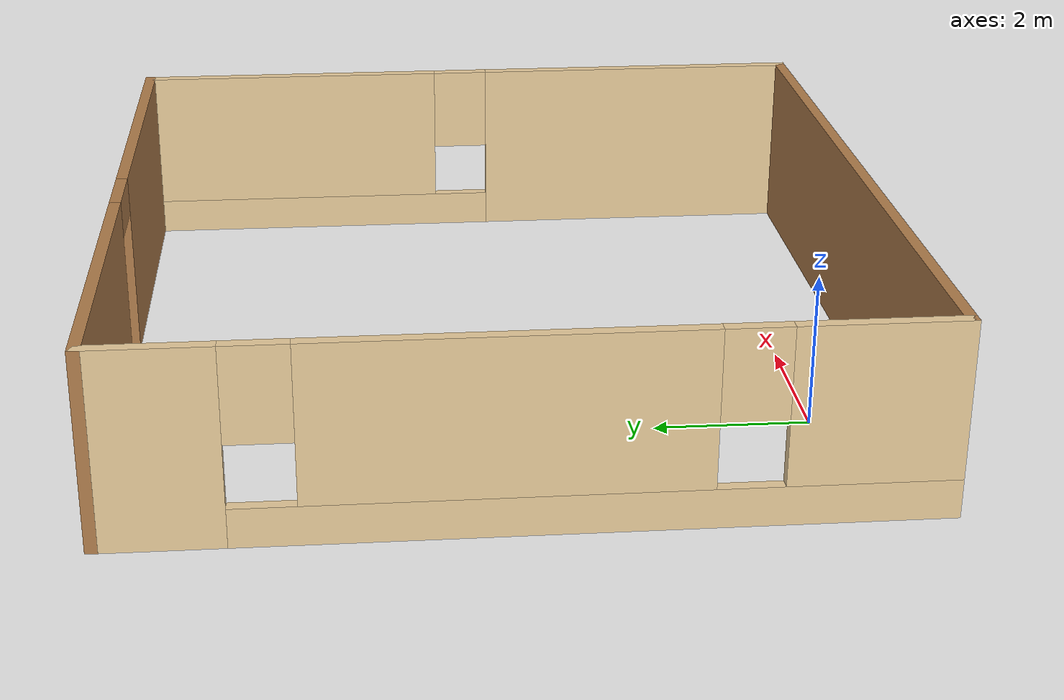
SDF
<?xml version='1.0'?>
<sdf version='1.6'>
  <model name='building'>
    <pose frame=''>2.505 3.815 0 0 -0 0</pose>
    <link name='Wall_0'>
      <collision name='Wall_0_Collision'>
        <geometry>
          <box>
            <size>10 0.15 2.5</size>
          </box>
        </geometry>
        <pose frame=''>0 0 1.25 0 -0 0</pose>
      </collision>
      <visual name='Wall_0_Visual'>
        <pose frame=''>0 0 1.25 0 -0 0</pose>
        <geometry>
          <box>
            <size>10 0.15 2.5</size>
          </box>
        </geometry>
        <material>
          <script>
            <uri>file://media/materials/scripts/gazebo.material</uri>
            <name>Gazebo/Wood</name>
          </script>
          <ambient>1 1 1 1</ambient>
        </material>
        <meta>
          <layer>0</layer>
        </meta>
      </visual>
      <pose frame=''>0 -4.925 0 0 -0 0</pose>
    </link>
    <link name='Wall_1'>
      <pose frame=''>4.925 0 0 0 -0 1.5708</pose>
      <visual name='Wall_1_Visual_0'>
        <pose frame=''>-2.62739 0 1.25 0 -0 0</pose>
        <geometry>
          <box>
            <size>4.74523 0.15 2.5</size>
          </box>
        </geometry>
        <material>
          <script>
            <uri>file://media/materials/scripts/gazebo.material</uri>
            <name>Gazebo/Grey</name>
          </script>
          <ambient>0.921569 0.807843 0.615686 1</ambient>
        </material>
        <meta>
          <layer>0</layer>
        </meta>
      </visual>
      <collision name='Wall_1_Collision_0'>
        <geometry>
          <box>
            <size>4.74523 0.15 2.5</size>
          </box>
        </geometry>
        <pose frame=''>-2.62739 0 1.25 0 -0 0</pose>
      </collision>
      <visual name='Wall_1_Visual_1'>
        <pose frame=''>2.37261 0 0.25 0 -0 0</pose>
        <geometry>
          <box>
            <size>5.25477 0.15 0.5</size>
          </box>
        </geometry>
        <material>
          <script>
            <uri>file://media/materials/scripts/gazebo.material</uri>
            <name>Gazebo/Grey</name>
          </script>
          <ambient>0.921569 0.807843 0.615686 1</ambient>
        </material>
        <meta>
          <layer>0</layer>
        </meta>
      </visual>
      <collision name='Wall_1_Collision_1'>
        <geometry>
          <box>
            <size>5.25477 0.15 0.5</size>
          </box>
        </geometry>
        <pose frame=''>2.37261 0 0.25 0 -0 0</pose>
      </collision>
      <visual name='Wall_1_Visual_2'>
        <pose frame=''>2.77261 0 1.5 0 -0 0</pose>
        <geometry>
          <box>
            <size>4.45477 0.15 2</size>
          </box>
        </geometry>
        <material>
          <script>
            <uri>file://media/materials/scripts/gazebo.material</uri>
            <name>Gazebo/Grey</name>
          </script>
          <ambient>0.921569 0.807843 0.615686 1</ambient>
        </material>
        <meta>
          <layer>0</layer>
        </meta>
      </visual>
      <collision name='Wall_1_Collision_2'>
        <geometry>
          <box>
            <size>4.45477 0.15 2</size>
          </box>
        </geometry>
        <pose frame=''>2.77261 0 1.5 0 -0 0</pose>
      </collision>
      <visual name='Wall_1_Visual_3'>
        <pose frame=''>0.145226 0 1.9 0 -0 0</pose>
        <geometry>
          <box>
            <size>0.8 0.15 1.2</size>
          </box>
        </geometry>
        <material>
          <script>
            <uri>file://media/materials/scripts/gazebo.material</uri>
            <name>Gazebo/Grey</name>
          </script>
          <ambient>0.921569 0.807843 0.615686 1</ambient>
        </material>
        <meta>
          <layer>0</layer>
        </meta>
      </visual>
      <collision name='Wall_1_Collision_3'>
        <geometry>
          <box>
            <size>0.8 0.15 1.2</size>
          </box>
        </geometry>
        <pose frame=''>0.145226 0 1.9 0 -0 0</pose>
      </collision>
    </link>
    <link name='Wall_2'>
      <pose frame=''>0 4.925 0 0 -0 3.14159</pose>
      <visual name='Wall_2_Visual_0'>
        <pose frame=''>-2.70057 0 1.25 0 -0 0</pose>
        <geometry>
          <box>
            <size>4.59886 0.15 2.5</size>
          </box>
        </geometry>
        <material>
          <script>
            <uri>file://media/materials/scripts/gazebo.material</uri>
            <name>Gazebo/Wood</name>
          </script>
          <ambient>1 1 1 1</ambient>
        </material>
        <meta>
          <layer>0</layer>
        </meta>
      </visual>
      <collision name='Wall_2_Collision_0'>
        <geometry>
          <box>
            <size>4.59886 0.15 2.5</size>
          </box>
        </geometry>
        <pose frame=''>-2.70057 0 1.25 0 -0 0</pose>
      </collision>
      <visual name='Wall_2_Visual_1'>
        <pose frame=''>2.74943 0 1.25 0 -0 0</pose>
        <geometry>
          <box>
            <size>4.50114 0.15 2.5</size>
          </box>
        </geometry>
        <material>
          <script>
            <uri>file://media/materials/scripts/gazebo.material</uri>
            <name>Gazebo/Wood</name>
          </script>
          <ambient>1 1 1 1</ambient>
        </material>
        <meta>
          <layer>0</layer>
        </meta>
      </visual>
      <collision name='Wall_2_Collision_1'>
        <geometry>
          <box>
            <size>4.50114 0.15 2.5</size>
          </box>
        </geometry>
        <pose frame=''>2.74943 0 1.25 0 -0 0</pose>
      </collision>
      <visual name='Wall_2_Visual_2'>
        <pose frame=''>0.048863 0 2.25 0 -0 0</pose>
        <geometry>
          <box>
            <size>0.9 0.15 0.5</size>
          </box>
        </geometry>
        <material>
          <script>
            <uri>file://media/materials/scripts/gazebo.material</uri>
            <name>Gazebo/Wood</name>
          </script>
          <ambient>1 1 1 1</ambient>
        </material>
        <meta>
          <layer>0</layer>
        </meta>
      </visual>
      <collision name='Wall_2_Collision_2'>
        <geometry>
          <box>
            <size>0.9 0.15 0.5</size>
          </box>
        </geometry>
        <pose frame=''>0.048863 0 2.25 0 -0 0</pose>
      </collision>
    </link>
    <link name='Wall_3'>
      <pose frame=''>-4.925 0 0 0 0 -1.5708</pose>
      <visual name='Wall_3_Visual_0'>
        <pose frame=''>-4.20381 0 1.25 0 -0 0</pose>
        <geometry>
          <box>
            <size>1.59239 0.15 2.5</size>
          </box>
        </geometry>
        <material>
          <script>
            <uri>file://media/materials/scripts/gazebo.material</uri>
            <name>Gazebo/Grey</name>
          </script>
          <ambient>0.921569 0.807843 0.615686 1</ambient>
        </material>
        <meta>
          <layer>0</layer>
        </meta>
      </visual>
      <collision name='Wall_3_Collision_0'>
        <geometry>
          <box>
            <size>1.59239 0.15 2.5</size>
          </box>
        </geometry>
        <pose frame=''>-4.20381 0 1.25 0 -0 0</pose>
      </collision>
      <visual name='Wall_3_Visual_1'>
        <pose frame=''>0.796195 0 0.25 0 -0 0</pose>
        <geometry>
          <box>
            <size>8.40761 0.15 0.5</size>
          </box>
        </geometry>
        <material>
          <script>
            <uri>file://media/materials/scripts/gazebo.material</uri>
            <name>Gazebo/Grey</name>
          </script>
          <ambient>0.921569 0.807843 0.615686 1</ambient>
        </material>
        <meta>
          <layer>0</layer>
        </meta>
      </visual>
      <collision name='Wall_3_Collision_1'>
        <geometry>
          <box>
            <size>8.40761 0.15 0.5</size>
          </box>
        </geometry>
        <pose frame=''>0.796195 0 0.25 0 -0 0</pose>
      </collision>
      <visual name='Wall_3_Visual_2'>
        <pose frame=''>-0.238856 0 1.5 0 -0 0</pose>
        <geometry>
          <box>
            <size>4.73751 0.15 2</size>
          </box>
        </geometry>
        <material>
          <script>
            <uri>file://media/materials/scripts/gazebo.material</uri>
            <name>Gazebo/Grey</name>
          </script>
          <ambient>0.921569 0.807843 0.615686 1</ambient>
        </material>
        <meta>
          <layer>0</layer>
        </meta>
      </visual>
      <collision name='Wall_3_Collision_2'>
        <geometry>
          <box>
            <size>4.73751 0.15 2</size>
          </box>
        </geometry>
        <pose frame=''>-0.238856 0 1.5 0 -0 0</pose>
      </collision>
      <visual name='Wall_3_Visual_3'>
        <pose frame=''>3.96495 0 1.5 0 -0 0</pose>
        <geometry>
          <box>
            <size>2.0701 0.15 2</size>
          </box>
        </geometry>
        <material>
          <script>
            <uri>file://media/materials/scripts/gazebo.material</uri>
            <name>Gazebo/Grey</name>
          </script>
          <ambient>0.921569 0.807843 0.615686 1</ambient>
        </material>
        <meta>
          <layer>0</layer>
        </meta>
      </visual>
      <collision name='Wall_3_Collision_3'>
        <geometry>
          <box>
            <size>2.0701 0.15 2</size>
          </box>
        </geometry>
        <pose frame=''>3.96495 0 1.5 0 -0 0</pose>
      </collision>
      <visual name='Wall_3_Visual_4'>
        <pose frame=''>-3.00761 0 1.9 0 -0 0</pose>
        <geometry>
          <box>
            <size>0.8 0.15 1.2</size>
          </box>
        </geometry>
        <material>
          <script>
            <uri>file://media/materials/scripts/gazebo.material</uri>
            <name>Gazebo/Grey</name>
          </script>
          <ambient>0.921569 0.807843 0.615686 1</ambient>
        </material>
        <meta>
          <layer>0</layer>
        </meta>
      </visual>
      <collision name='Wall_3_Collision_4'>
        <geometry>
          <box>
            <size>0.8 0.15 1.2</size>
          </box>
        </geometry>
        <pose frame=''>-3.00761 0 1.9 0 -0 0</pose>
      </collision>
      <visual name='Wall_3_Visual_5'>
        <pose frame=''>2.5299 0 1.9 0 -0 0</pose>
        <geometry>
          <box>
            <size>0.8 0.15 1.2</size>
          </box>
        </geometry>
        <material>
          <script>
            <uri>file://media/materials/scripts/gazebo.material</uri>
            <name>Gazebo/Grey</name>
          </script>
          <ambient>0.921569 0.807843 0.615686 1</ambient>
        </material>
        <meta>
          <layer>0</layer>
        </meta>
      </visual>
      <collision name='Wall_3_Collision_5'>
        <geometry>
          <box>
            <size>0.8 0.15 1.2</size>
          </box>
        </geometry>
        <pose frame=''>2.5299 0 1.9 0 -0 0</pose>
      </collision>
    </link>
    <static>1</static>
  </model>
</sdf>
